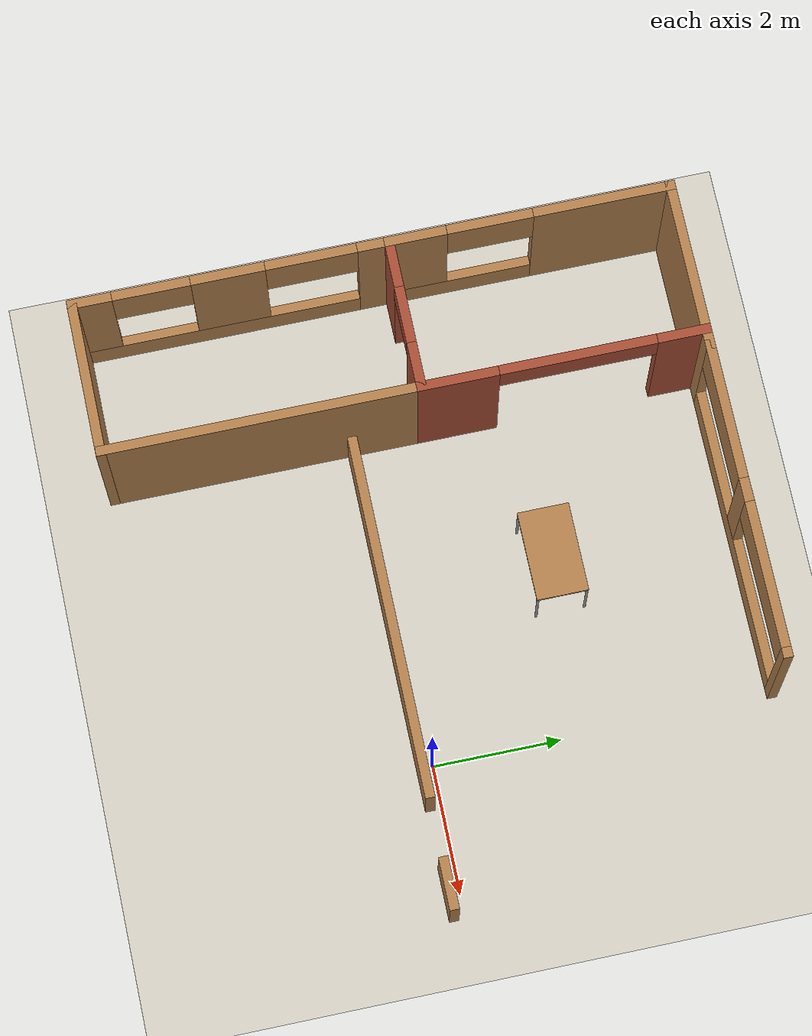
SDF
<sdf version="1.6">
 <world name="default">
  <model name="ground">
   <static>true</static>
   <link name="ground">
    <collision name="ground">
     <geometry><plane><normal>0 0 1</normal><size>100 100</size></plane></geometry>
    </collision>
    <visual name="ground">
     <geometry><plane><normal>0 0 1</normal><size>30 24</size></plane></geometry>
     <material>
      <ambient>.76 .74 .69 1</ambient>
      <diffuse>.82 .80 .75 1</diffuse>
      <specular>.02 .02 .02 1</specular>
     </material>
    </visual>
   </link>
  </model>
  <model name="turtlebot3_house">
   <link name="Wall_108">
    <pose>-1.37512 -0.17488 0 0 -0 0</pose>
    <visual name="Wall_108_Visual_0">
     <pose>-0.856324 0 0.5 0 -0 0</pose>
     <geometry><box><size>5.78735 0.15 1</size></box></geometry>
     <material>
      <script><uri>file://media/materials/scripts/gazebo.material</uri><name>Gazebo/Wood</name></script>
      <ambient>1 1 1 1</ambient>
      <diffuse>1 1 1 1</diffuse>
      <specular>0.2 0.2 0.2 1</specular>
      <emissive>0 0 0 1</emissive>
     </material>
    </visual>
    <visual name="Wall_108_Visual_1">
     <pose>3.34368 0 0.5 0 -0 0</pose>
     <geometry><box><size>0.812647 0.15 1</size></box></geometry>
     <material>
      <script><uri>file://media/materials/scripts/gazebo.material</uri><name>Gazebo/Wood</name></script>
      <ambient>1 1 1 1</ambient>
      <diffuse>1 1 1 1</diffuse>
      <specular>0.2 0.2 0.2 1</specular>
      <emissive>0 0 0 1</emissive>
     </material>
    </visual>
    <collision name="Wall_108_Collision_1">
     <pose>3.34368 0 0.5 0 -0 0</pose>
     <geometry><box><size>0.812647 0.15 1</size></box></geometry>
     <surface>
      <friction>
       <ode><mu>1</mu><mu2>1</mu2><fdir1>0 0 0</fdir1><slip1>0</slip1><slip2>0</slip2></ode>
       <torsional>
        <coefficient>1</coefficient>
        <patch_radius>0</patch_radius>
        <surface_radius>0</surface_radius>
        <use_patch_radius>1</use_patch_radius>
        <ode><slip>0</slip></ode>
       </torsional>
      </friction>
      <bounce><restitution_coefficient>0</restitution_coefficient><threshold>1e+06</threshold></bounce>
      <contact>
       <collide_without_contact>0</collide_without_contact>
       <collide_without_contact_bitmask>1</collide_without_contact_bitmask>
       <collide_bitmask>1</collide_bitmask>
       <ode>
        <soft_cfm>0</soft_cfm>
        <soft_erp>0.2</soft_erp>
        <kp>1e+13</kp>
        <kd>1</kd>
        <max_vel>0.01</max_vel>
        <min_depth>0</min_depth>
       </ode>
       <bullet>
        <split_impulse>1</split_impulse>
        <split_impulse_penetration_threshold>-0.01</split_impulse_penetration_threshold>
        <soft_cfm>0</soft_cfm>
        <soft_erp>0.2</soft_erp>
        <kp>1e+13</kp>
        <kd>1</kd>
       </bullet>
      </contact>
     </surface>
    </collision>
    <collision name="Wall_108_Collision_0">
     <pose>-0.856324 0 0.5 0 -0 0</pose>
     <geometry><box><size>5.78735 0.15 1</size></box></geometry>
     <surface>
      <friction>
       <ode><mu>1</mu><mu2>1</mu2><fdir1>0 0 0</fdir1><slip1>0</slip1><slip2>0</slip2></ode>
       <torsional>
        <coefficient>1</coefficient>
        <patch_radius>0</patch_radius>
        <surface_radius>0</surface_radius>
        <use_patch_radius>1</use_patch_radius>
        <ode><slip>0</slip></ode>
       </torsional>
      </friction>
      <bounce><restitution_coefficient>0</restitution_coefficient><threshold>1e+06</threshold></bounce>
      <contact>
       <collide_without_contact>0</collide_without_contact>
       <collide_without_contact_bitmask>1</collide_without_contact_bitmask>
       <collide_bitmask>1</collide_bitmask>
       <ode>
        <soft_cfm>0</soft_cfm>
        <soft_erp>0.2</soft_erp>
        <kp>1e+13</kp>
        <kd>1</kd>
        <max_vel>0.01</max_vel>
        <min_depth>0</min_depth>
       </ode>
       <bullet>
        <split_impulse>1</split_impulse>
        <split_impulse_penetration_threshold>-0.01</split_impulse_penetration_threshold>
        <soft_cfm>0</soft_cfm>
        <soft_erp>0.2</soft_erp>
        <kp>1e+13</kp>
        <kd>1</kd>
       </bullet>
      </contact>
     </surface>
    </collision>
   </link>
   <link name="Wall_83">
    <pose>-2.475 5.275 0 0 -0 3.14159</pose>
    <visual name="Wall_83_Visual_2">
     <pose>0.110246 0 1.5 0 -0 0</pose>
     <geometry><box><size>0.37052 0.15 2</size></box></geometry>
     <material>
      <script><uri>file://media/materials/scripts/gazebo.material</uri><name>Gazebo/Wood</name></script>
      <ambient>1 1 1 1</ambient>
      <diffuse>1 1 1 1</diffuse>
      <specular>0.2 0.2 0.2 1</specular>
      <emissive>0 0 0 1</emissive>
     </material>
    </visual>
    <visual name="Wall_83_Visual_6">
     <pose>1.39775 0 2.1 0 -0 0</pose>
     <geometry><box><size>2.20449 0.15 0.8</size></box></geometry>
     <material>
      <script><uri>file://media/materials/scripts/gazebo.material</uri><name>Gazebo/Wood</name></script>
      <ambient>1 1 1 1</ambient>
      <diffuse>1 1 1 1</diffuse>
      <specular>0.2 0.2 0.2 1</specular>
      <emissive>0 0 0 1</emissive>
     </material>
    </visual>
    <visual name="Wall_83_Visual_3">
     <pose>0.110246 0 1.5 0 -0 0</pose>
     <geometry><box><size>0.37052 0.15 2</size></box></geometry>
     <material>
      <script><uri>file://media/materials/scripts/gazebo.material</uri><name>Gazebo/Wood</name></script>
      <ambient>1 1 1 1</ambient>
      <diffuse>1 1 1 1</diffuse>
      <specular>0.2 0.2 0.2 1</specular>
      <emissive>0 0 0 1</emissive>
     </material>
    </visual>
    <visual name="Wall_83_Visual_1">
     <pose>0.080993 0 0.25 0 -0 0</pose>
     <geometry><box><size>4.83801 0.15 0.5</size></box></geometry>
     <material>
      <script><uri>file://media/materials/scripts/gazebo.material</uri><name>Gazebo/Wood</name></script>
      <ambient>1 1 1 1</ambient>
      <diffuse>1 1 1 1</diffuse>
      <specular>0.2 0.2 0.2 1</specular>
      <emissive>0 0 0 1</emissive>
     </material>
    </visual>
    <visual name="Wall_83_Visual_4">
     <pose>-1.20651 0 2.1 0 -0 0</pose>
     <geometry><box><size>2.263 0.15 0.8</size></box></geometry>
     <material>
      <script><uri>file://media/materials/scripts/gazebo.material</uri><name>Gazebo/Wood</name></script>
      <ambient>1 1 1 1</ambient>
      <diffuse>1 1 1 1</diffuse>
      <specular>0.2 0.2 0.2 1</specular>
      <emissive>0 0 0 1</emissive>
     </material>
    </visual>
    <visual name="Wall_83_Visual_5">
     <pose>1.39775 0 2.1 0 -0 0</pose>
     <geometry><box><size>2.20449 0.15 0.8</size></box></geometry>
     <material>
      <script><uri>file://media/materials/scripts/gazebo.material</uri><name>Gazebo/Wood</name></script>
      <ambient>1 1 1 1</ambient>
      <diffuse>1 1 1 1</diffuse>
      <specular>0.2 0.2 0.2 1</specular>
      <emissive>0 0 0 1</emissive>
     </material>
    </visual>
    <visual name="Wall_83_Visual_0">
     <pose>-2.41901 0 1.25 0 -0 0</pose>
     <geometry><box><size>0.161986 0.15 2.5</size></box></geometry>
     <material>
      <script><uri>file://media/materials/scripts/gazebo.material</uri><name>Gazebo/Wood</name></script>
      <ambient>1 1 1 1</ambient>
      <diffuse>1 1 1 1</diffuse>
      <specular>0.2 0.2 0.2 1</specular>
      <emissive>0 0 0 1</emissive>
     </material>
    </visual>
    <collision name="Wall_83_Collision_4">
     <pose>-1.20651 0 2.1 0 -0 0</pose>
     <geometry><box><size>2.263 0.15 0.8</size></box></geometry>
     <surface>
      <friction>
       <ode><mu>1</mu><mu2>1</mu2><fdir1>0 0 0</fdir1><slip1>0</slip1><slip2>0</slip2></ode>
       <torsional>
        <coefficient>1</coefficient>
        <patch_radius>0</patch_radius>
        <surface_radius>0</surface_radius>
        <use_patch_radius>1</use_patch_radius>
        <ode><slip>0</slip></ode>
       </torsional>
      </friction>
      <bounce><restitution_coefficient>0</restitution_coefficient><threshold>1e+06</threshold></bounce>
      <contact>
       <collide_without_contact>0</collide_without_contact>
       <collide_without_contact_bitmask>1</collide_without_contact_bitmask>
       <collide_bitmask>1</collide_bitmask>
       <ode>
        <soft_cfm>0</soft_cfm>
        <soft_erp>0.2</soft_erp>
        <kp>1e+13</kp>
        <kd>1</kd>
        <max_vel>0.01</max_vel>
        <min_depth>0</min_depth>
       </ode>
       <bullet>
        <split_impulse>1</split_impulse>
        <split_impulse_penetration_threshold>-0.01</split_impulse_penetration_threshold>
        <soft_cfm>0</soft_cfm>
        <soft_erp>0.2</soft_erp>
        <kp>1e+13</kp>
        <kd>1</kd>
       </bullet>
      </contact>
     </surface>
    </collision>
    <collision name="Wall_83_Collision_2">
     <pose>0.110246 0 1.5 0 -0 0</pose>
     <geometry><box><size>0.37052 0.15 2</size></box></geometry>
     <surface>
      <friction>
       <ode><mu>1</mu><mu2>1</mu2><fdir1>0 0 0</fdir1><slip1>0</slip1><slip2>0</slip2></ode>
       <torsional>
        <coefficient>1</coefficient>
        <patch_radius>0</patch_radius>
        <surface_radius>0</surface_radius>
        <use_patch_radius>1</use_patch_radius>
        <ode><slip>0</slip></ode>
       </torsional>
      </friction>
      <bounce><restitution_coefficient>0</restitution_coefficient><threshold>1e+06</threshold></bounce>
      <contact>
       <collide_without_contact>0</collide_without_contact>
       <collide_without_contact_bitmask>1</collide_without_contact_bitmask>
       <collide_bitmask>1</collide_bitmask>
       <ode>
        <soft_cfm>0</soft_cfm>
        <soft_erp>0.2</soft_erp>
        <kp>1e+13</kp>
        <kd>1</kd>
        <max_vel>0.01</max_vel>
        <min_depth>0</min_depth>
       </ode>
       <bullet>
        <split_impulse>1</split_impulse>
        <split_impulse_penetration_threshold>-0.01</split_impulse_penetration_threshold>
        <soft_cfm>0</soft_cfm>
        <soft_erp>0.2</soft_erp>
        <kp>1e+13</kp>
        <kd>1</kd>
       </bullet>
      </contact>
     </surface>
    </collision>
    <collision name="Wall_83_Collision_6">
     <pose>1.39775 0 2.1 0 -0 0</pose>
     <geometry><box><size>2.20449 0.15 0.8</size></box></geometry>
     <surface>
      <friction>
       <ode><mu>1</mu><mu2>1</mu2><fdir1>0 0 0</fdir1><slip1>0</slip1><slip2>0</slip2></ode>
       <torsional>
        <coefficient>1</coefficient>
        <patch_radius>0</patch_radius>
        <surface_radius>0</surface_radius>
        <use_patch_radius>1</use_patch_radius>
        <ode><slip>0</slip></ode>
       </torsional>
      </friction>
      <bounce><restitution_coefficient>0</restitution_coefficient><threshold>1e+06</threshold></bounce>
      <contact>
       <collide_without_contact>0</collide_without_contact>
       <collide_without_contact_bitmask>1</collide_without_contact_bitmask>
       <collide_bitmask>1</collide_bitmask>
       <ode>
        <soft_cfm>0</soft_cfm>
        <soft_erp>0.2</soft_erp>
        <kp>1e+13</kp>
        <kd>1</kd>
        <max_vel>0.01</max_vel>
        <min_depth>0</min_depth>
       </ode>
       <bullet>
        <split_impulse>1</split_impulse>
        <split_impulse_penetration_threshold>-0.01</split_impulse_penetration_threshold>
        <soft_cfm>0</soft_cfm>
        <soft_erp>0.2</soft_erp>
        <kp>1e+13</kp>
        <kd>1</kd>
       </bullet>
      </contact>
     </surface>
    </collision>
    <collision name="Wall_83_Collision_0">
     <pose>-2.41901 0 1.25 0 -0 0</pose>
     <geometry><box><size>0.161986 0.15 2.5</size></box></geometry>
     <surface>
      <friction>
       <ode><mu>1</mu><mu2>1</mu2><fdir1>0 0 0</fdir1><slip1>0</slip1><slip2>0</slip2></ode>
       <torsional>
        <coefficient>1</coefficient>
        <patch_radius>0</patch_radius>
        <surface_radius>0</surface_radius>
        <use_patch_radius>1</use_patch_radius>
        <ode><slip>0</slip></ode>
       </torsional>
      </friction>
      <bounce><restitution_coefficient>0</restitution_coefficient><threshold>1e+06</threshold></bounce>
      <contact>
       <collide_without_contact>0</collide_without_contact>
       <collide_without_contact_bitmask>1</collide_without_contact_bitmask>
       <collide_bitmask>1</collide_bitmask>
       <ode>
        <soft_cfm>0</soft_cfm>
        <soft_erp>0.2</soft_erp>
        <kp>1e+13</kp>
        <kd>1</kd>
        <max_vel>0.01</max_vel>
        <min_depth>0</min_depth>
       </ode>
       <bullet>
        <split_impulse>1</split_impulse>
        <split_impulse_penetration_threshold>-0.01</split_impulse_penetration_threshold>
        <soft_cfm>0</soft_cfm>
        <soft_erp>0.2</soft_erp>
        <kp>1e+13</kp>
        <kd>1</kd>
       </bullet>
      </contact>
     </surface>
    </collision>
    <collision name="Wall_83_Collision_1">
     <pose>0.080993 0 0.25 0 -0 0</pose>
     <geometry><box><size>4.83801 0.15 0.5</size></box></geometry>
     <surface>
      <friction>
       <ode><mu>1</mu><mu2>1</mu2><fdir1>0 0 0</fdir1><slip1>0</slip1><slip2>0</slip2></ode>
       <torsional>
        <coefficient>1</coefficient>
        <patch_radius>0</patch_radius>
        <surface_radius>0</surface_radius>
        <use_patch_radius>1</use_patch_radius>
        <ode><slip>0</slip></ode>
       </torsional>
      </friction>
      <bounce><restitution_coefficient>0</restitution_coefficient><threshold>1e+06</threshold></bounce>
      <contact>
       <collide_without_contact>0</collide_without_contact>
       <collide_without_contact_bitmask>1</collide_without_contact_bitmask>
       <collide_bitmask>1</collide_bitmask>
       <ode>
        <soft_cfm>0</soft_cfm>
        <soft_erp>0.2</soft_erp>
        <kp>1e+13</kp>
        <kd>1</kd>
        <max_vel>0.01</max_vel>
        <min_depth>0</min_depth>
       </ode>
       <bullet>
        <split_impulse>1</split_impulse>
        <split_impulse_penetration_threshold>-0.01</split_impulse_penetration_threshold>
        <soft_cfm>0</soft_cfm>
        <soft_erp>0.2</soft_erp>
        <kp>1e+13</kp>
        <kd>1</kd>
       </bullet>
      </contact>
     </surface>
    </collision>
    <collision name="Wall_83_Collision_3">
     <pose>0.110246 0 1.5 0 -0 0</pose>
     <geometry><box><size>0.37052 0.15 2</size></box></geometry>
     <surface>
      <friction>
       <ode><mu>1</mu><mu2>1</mu2><fdir1>0 0 0</fdir1><slip1>0</slip1><slip2>0</slip2></ode>
       <torsional>
        <coefficient>1</coefficient>
        <patch_radius>0</patch_radius>
        <surface_radius>0</surface_radius>
        <use_patch_radius>1</use_patch_radius>
        <ode><slip>0</slip></ode>
       </torsional>
      </friction>
      <bounce><restitution_coefficient>0</restitution_coefficient><threshold>1e+06</threshold></bounce>
      <contact>
       <collide_without_contact>0</collide_without_contact>
       <collide_without_contact_bitmask>1</collide_without_contact_bitmask>
       <collide_bitmask>1</collide_bitmask>
       <ode>
        <soft_cfm>0</soft_cfm>
        <soft_erp>0.2</soft_erp>
        <kp>1e+13</kp>
        <kd>1</kd>
        <max_vel>0.01</max_vel>
        <min_depth>0</min_depth>
       </ode>
       <bullet>
        <split_impulse>1</split_impulse>
        <split_impulse_penetration_threshold>-0.01</split_impulse_penetration_threshold>
        <soft_cfm>0</soft_cfm>
        <soft_erp>0.2</soft_erp>
        <kp>1e+13</kp>
        <kd>1</kd>
       </bullet>
      </contact>
     </surface>
    </collision>
    <collision name="Wall_83_Collision_5">
     <pose>1.39775 0 2.1 0 -0 0</pose>
     <geometry><box><size>2.20449 0.15 0.8</size></box></geometry>
     <surface>
      <friction>
       <ode><mu>1</mu><mu2>1</mu2><fdir1>0 0 0</fdir1><slip1>0</slip1><slip2>0</slip2></ode>
       <torsional>
        <coefficient>1</coefficient>
        <patch_radius>0</patch_radius>
        <surface_radius>0</surface_radius>
        <use_patch_radius>1</use_patch_radius>
        <ode><slip>0</slip></ode>
       </torsional>
      </friction>
      <bounce><restitution_coefficient>0</restitution_coefficient><threshold>1e+06</threshold></bounce>
      <contact>
       <collide_without_contact>0</collide_without_contact>
       <collide_without_contact_bitmask>1</collide_without_contact_bitmask>
       <collide_bitmask>1</collide_bitmask>
       <ode>
        <soft_cfm>0</soft_cfm>
        <soft_erp>0.2</soft_erp>
        <kp>1e+13</kp>
        <kd>1</kd>
        <max_vel>0.01</max_vel>
        <min_depth>0</min_depth>
       </ode>
       <bullet>
        <split_impulse>1</split_impulse>
        <split_impulse_penetration_threshold>-0.01</split_impulse_penetration_threshold>
        <soft_cfm>0</soft_cfm>
        <soft_erp>0.2</soft_erp>
        <kp>1e+13</kp>
        <kd>1</kd>
       </bullet>
      </contact>
     </surface>
    </collision>
   </link>
   <link name="Wall_84">
    <pose>-6.2 5.275 0 0 -0 3.14159</pose>
    <visual name="Wall_84_Visual">
     <pose>0 0 1.25 0 -0 0</pose>
     <geometry><box><size>2.75 0.15 2.5</size></box></geometry>
     <material>
      <script><uri>file://media/materials/scripts/gazebo.material</uri><name>Gazebo/Wood</name></script>
      <ambient>1 1 1 1</ambient>
      <diffuse>1 1 1 1</diffuse>
      <specular>0.2 0.2 0.2 1</specular>
      <emissive>0 0 0 1</emissive>
     </material>
    </visual>
    <collision name="Wall_84_Collision">
     <pose>0 0 1.25 0 -0 0</pose>
     <geometry><box><size>2.75 0.15 2.5</size></box></geometry>
     <surface>
      <friction>
       <ode><mu>1</mu><mu2>1</mu2><fdir1>0 0 0</fdir1><slip1>0</slip1><slip2>0</slip2></ode>
       <torsional>
        <coefficient>1</coefficient>
        <patch_radius>0</patch_radius>
        <surface_radius>0</surface_radius>
        <use_patch_radius>1</use_patch_radius>
        <ode><slip>0</slip></ode>
       </torsional>
      </friction>
      <bounce><restitution_coefficient>0</restitution_coefficient><threshold>1e+06</threshold></bounce>
      <contact>
       <collide_without_contact>0</collide_without_contact>
       <collide_without_contact_bitmask>1</collide_without_contact_bitmask>
       <collide_bitmask>1</collide_bitmask>
       <ode>
        <soft_cfm>0</soft_cfm>
        <soft_erp>0.2</soft_erp>
        <kp>1e+13</kp>
        <kd>1</kd>
        <max_vel>0.01</max_vel>
        <min_depth>0</min_depth>
       </ode>
       <bullet>
        <split_impulse>1</split_impulse>
        <split_impulse_penetration_threshold>-0.01</split_impulse_penetration_threshold>
        <soft_cfm>0</soft_cfm>
        <soft_erp>0.2</soft_erp>
        <kp>1e+13</kp>
        <kd>1</kd>
       </bullet>
      </contact>
     </surface>
    </collision>
   </link>
   <link name="Wall_85">
    <pose>-7.5 3.1 0 0 0 -1.5708</pose>
    <visual name="Wall_85_Visual_3">
     <pose>0.62212 0 2.1 0 -0 0</pose>
     <geometry><box><size>1.332 0.15 0.8</size></box></geometry>
     <material>
      <script><uri>file://media/materials/scripts/gazebo.material</uri><name>Gazebo/Wood</name></script>
      <ambient>1 1 1 1</ambient>
      <diffuse>1 1 1 1</diffuse>
      <specular>0.2 0.2 0.2 1</specular>
      <emissive>0 0 0 1</emissive>
     </material>
    </visual>
    <visual name="Wall_85_Visual_2">
     <pose>1.76906 0 1.5 0 -0 0</pose>
     <geometry><box><size>0.96188 0.15 2</size></box></geometry>
     <material>
      <script><uri>file://media/materials/scripts/gazebo.material</uri><name>Gazebo/Wood</name></script>
      <ambient>1 1 1 1</ambient>
      <diffuse>1 1 1 1</diffuse>
      <specular>0.2 0.2 0.2 1</specular>
      <emissive>0 0 0 1</emissive>
     </material>
    </visual>
    <visual name="Wall_85_Visual_0">
     <pose>-1.14694 0 1.25 0 -0 0</pose>
     <geometry><box><size>2.20612 0.15 2.5</size></box></geometry>
     <material>
      <script><uri>file://media/materials/scripts/gazebo.material</uri><name>Gazebo/Wood</name></script>
      <ambient>1 1 1 1</ambient>
      <diffuse>1 1 1 1</diffuse>
      <specular>0.2 0.2 0.2 1</specular>
      <emissive>0 0 0 1</emissive>
     </material>
    </visual>
    <visual name="Wall_85_Visual_1">
     <pose>1.10306 0 0.25 0 -0 0</pose>
     <geometry><box><size>2.29388 0.15 0.5</size></box></geometry>
     <material>
      <script><uri>file://media/materials/scripts/gazebo.material</uri><name>Gazebo/Wood</name></script>
      <ambient>1 1 1 1</ambient>
      <diffuse>1 1 1 1</diffuse>
      <specular>0.2 0.2 0.2 1</specular>
      <emissive>0 0 0 1</emissive>
     </material>
    </visual>
    <collision name="Wall_85_Collision_3">
     <pose>0.62212 0 2.1 0 -0 0</pose>
     <geometry><box><size>1.332 0.15 0.8</size></box></geometry>
     <surface>
      <friction>
       <ode><mu>1</mu><mu2>1</mu2><fdir1>0 0 0</fdir1><slip1>0</slip1><slip2>0</slip2></ode>
       <torsional>
        <coefficient>1</coefficient>
        <patch_radius>0</patch_radius>
        <surface_radius>0</surface_radius>
        <use_patch_radius>1</use_patch_radius>
        <ode><slip>0</slip></ode>
       </torsional>
      </friction>
      <bounce><restitution_coefficient>0</restitution_coefficient><threshold>1e+06</threshold></bounce>
      <contact>
       <collide_without_contact>0</collide_without_contact>
       <collide_without_contact_bitmask>1</collide_without_contact_bitmask>
       <collide_bitmask>1</collide_bitmask>
       <ode>
        <soft_cfm>0</soft_cfm>
        <soft_erp>0.2</soft_erp>
        <kp>1e+13</kp>
        <kd>1</kd>
        <max_vel>0.01</max_vel>
        <min_depth>0</min_depth>
       </ode>
       <bullet>
        <split_impulse>1</split_impulse>
        <split_impulse_penetration_threshold>-0.01</split_impulse_penetration_threshold>
        <soft_cfm>0</soft_cfm>
        <soft_erp>0.2</soft_erp>
        <kp>1e+13</kp>
        <kd>1</kd>
       </bullet>
      </contact>
     </surface>
    </collision>
    <collision name="Wall_85_Collision_2">
     <pose>1.76906 0 1.5 0 -0 0</pose>
     <geometry><box><size>0.96188 0.15 2</size></box></geometry>
     <surface>
      <friction>
       <ode><mu>1</mu><mu2>1</mu2><fdir1>0 0 0</fdir1><slip1>0</slip1><slip2>0</slip2></ode>
       <torsional>
        <coefficient>1</coefficient>
        <patch_radius>0</patch_radius>
        <surface_radius>0</surface_radius>
        <use_patch_radius>1</use_patch_radius>
        <ode><slip>0</slip></ode>
       </torsional>
      </friction>
      <bounce><restitution_coefficient>0</restitution_coefficient><threshold>1e+06</threshold></bounce>
      <contact>
       <collide_without_contact>0</collide_without_contact>
       <collide_without_contact_bitmask>1</collide_without_contact_bitmask>
       <collide_bitmask>1</collide_bitmask>
       <ode>
        <soft_cfm>0</soft_cfm>
        <soft_erp>0.2</soft_erp>
        <kp>1e+13</kp>
        <kd>1</kd>
        <max_vel>0.01</max_vel>
        <min_depth>0</min_depth>
       </ode>
       <bullet>
        <split_impulse>1</split_impulse>
        <split_impulse_penetration_threshold>-0.01</split_impulse_penetration_threshold>
        <soft_cfm>0</soft_cfm>
        <soft_erp>0.2</soft_erp>
        <kp>1e+13</kp>
        <kd>1</kd>
       </bullet>
      </contact>
     </surface>
    </collision>
    <collision name="Wall_85_Collision_1">
     <pose>1.10306 0 0.25 0 -0 0</pose>
     <geometry><box><size>2.29388 0.15 0.5</size></box></geometry>
     <surface>
      <friction>
       <ode><mu>1</mu><mu2>1</mu2><fdir1>0 0 0</fdir1><slip1>0</slip1><slip2>0</slip2></ode>
       <torsional>
        <coefficient>1</coefficient>
        <patch_radius>0</patch_radius>
        <surface_radius>0</surface_radius>
        <use_patch_radius>1</use_patch_radius>
        <ode><slip>0</slip></ode>
       </torsional>
      </friction>
      <bounce><restitution_coefficient>0</restitution_coefficient><threshold>1e+06</threshold></bounce>
      <contact>
       <collide_without_contact>0</collide_without_contact>
       <collide_without_contact_bitmask>1</collide_without_contact_bitmask>
       <collide_bitmask>1</collide_bitmask>
       <ode>
        <soft_cfm>0</soft_cfm>
        <soft_erp>0.2</soft_erp>
        <kp>1e+13</kp>
        <kd>1</kd>
        <max_vel>0.01</max_vel>
        <min_depth>0</min_depth>
       </ode>
       <bullet>
        <split_impulse>1</split_impulse>
        <split_impulse_penetration_threshold>-0.01</split_impulse_penetration_threshold>
        <soft_cfm>0</soft_cfm>
        <soft_erp>0.2</soft_erp>
        <kp>1e+13</kp>
        <kd>1</kd>
       </bullet>
      </contact>
     </surface>
    </collision>
    <collision name="Wall_85_Collision_0">
     <pose>-1.14694 0 1.25 0 -0 0</pose>
     <geometry><box><size>2.20612 0.15 2.5</size></box></geometry>
     <surface>
      <friction>
       <ode><mu>1</mu><mu2>1</mu2><fdir1>0 0 0</fdir1><slip1>0</slip1><slip2>0</slip2></ode>
       <torsional>
        <coefficient>1</coefficient>
        <patch_radius>0</patch_radius>
        <surface_radius>0</surface_radius>
        <use_patch_radius>1</use_patch_radius>
        <ode><slip>0</slip></ode>
       </torsional>
      </friction>
      <bounce><restitution_coefficient>0</restitution_coefficient><threshold>1e+06</threshold></bounce>
      <contact>
       <collide_without_contact>0</collide_without_contact>
       <collide_without_contact_bitmask>1</collide_without_contact_bitmask>
       <collide_bitmask>1</collide_bitmask>
       <ode>
        <soft_cfm>0</soft_cfm>
        <soft_erp>0.2</soft_erp>
        <kp>1e+13</kp>
        <kd>1</kd>
        <max_vel>0.01</max_vel>
        <min_depth>0</min_depth>
       </ode>
       <bullet>
        <split_impulse>1</split_impulse>
        <split_impulse_penetration_threshold>-0.01</split_impulse_penetration_threshold>
        <soft_cfm>0</soft_cfm>
        <soft_erp>0.2</soft_erp>
        <kp>1e+13</kp>
        <kd>1</kd>
       </bullet>
      </contact>
     </surface>
    </collision>
   </link>
   <link name="Wall_86">
    <pose>-7.5 -1.5 0 0 0 -1.5708</pose>
    <visual name="Wall_86_Visual_1">
     <pose>0.28462 0 0.25 0 -0 0</pose>
     <geometry><box><size>4.43076 0.15 0.5</size></box></geometry>
     <material>
      <script><uri>file://media/materials/scripts/gazebo.material</uri><name>Gazebo/Wood</name></script>
      <ambient>1 1 1 1</ambient>
      <diffuse>1 1 1 1</diffuse>
      <specular>0.2 0.2 0.2 1</specular>
      <emissive>0 0 0 1</emissive>
     </material>
    </visual>
    <visual name="Wall_86_Visual_4">
     <pose>-1.22476 0 2.1 0 -0 0</pose>
     <geometry><box><size>1.412 0.15 0.8</size></box></geometry>
     <material>
      <script><uri>file://media/materials/scripts/gazebo.material</uri><name>Gazebo/Wood</name></script>
      <ambient>1 1 1 1</ambient>
      <diffuse>1 1 1 1</diffuse>
      <specular>0.2 0.2 0.2 1</specular>
      <emissive>0 0 0 1</emissive>
     </material>
    </visual>
    <visual name="Wall_86_Visual_0">
     <pose>-2.21538 0 1.25 0 -0 0</pose>
     <geometry><box><size>0.569241 0.15 2.5</size></box></geometry>
     <material>
      <script><uri>file://media/materials/scripts/gazebo.material</uri><name>Gazebo/Wood</name></script>
      <ambient>1 1 1 1</ambient>
      <diffuse>1 1 1 1</diffuse>
      <specular>0.2 0.2 0.2 1</specular>
      <emissive>0 0 0 1</emissive>
     </material>
    </visual>
    <visual name="Wall_86_Visual_5">
     <pose>1.22246 0 2.1 0 -0 0</pose>
     <geometry><box><size>1.199 0.15 0.8</size></box></geometry>
     <material>
      <script><uri>file://media/materials/scripts/gazebo.material</uri><name>Gazebo/Wood</name></script>
      <ambient>1 1 1 1</ambient>
      <diffuse>1 1 1 1</diffuse>
      <specular>0.2 0.2 0.2 1</specular>
      <emissive>0 0 0 1</emissive>
     </material>
    </visual>
    <visual name="Wall_86_Visual_2">
     <pose>0.0521 0 1.5 0 -0 0</pose>
     <geometry><box><size>1.14172 0.15 2</size></box></geometry>
     <material>
      <script><uri>file://media/materials/scripts/gazebo.material</uri><name>Gazebo/Wood</name></script>
      <ambient>1 1 1 1</ambient>
      <diffuse>1 1 1 1</diffuse>
      <specular>0.2 0.2 0.2 1</specular>
      <emissive>0 0 0 1</emissive>
     </material>
    </visual>
    <visual name="Wall_86_Visual_3">
     <pose>2.16098 0 1.5 0 -0 0</pose>
     <geometry><box><size>0.678041 0.15 2</size></box></geometry>
     <material>
      <script><uri>file://media/materials/scripts/gazebo.material</uri><name>Gazebo/Wood</name></script>
      <ambient>1 1 1 1</ambient>
      <diffuse>1 1 1 1</diffuse>
      <specular>0.2 0.2 0.2 1</specular>
      <emissive>0 0 0 1</emissive>
     </material>
    </visual>
    <collision name="Wall_86_Collision_4">
     <pose>-1.22476 0 2.1 0 -0 0</pose>
     <geometry><box><size>1.412 0.15 0.8</size></box></geometry>
     <surface>
      <friction>
       <ode><mu>1</mu><mu2>1</mu2><fdir1>0 0 0</fdir1><slip1>0</slip1><slip2>0</slip2></ode>
       <torsional>
        <coefficient>1</coefficient>
        <patch_radius>0</patch_radius>
        <surface_radius>0</surface_radius>
        <use_patch_radius>1</use_patch_radius>
        <ode><slip>0</slip></ode>
       </torsional>
      </friction>
      <bounce><restitution_coefficient>0</restitution_coefficient><threshold>1e+06</threshold></bounce>
      <contact>
       <collide_without_contact>0</collide_without_contact>
       <collide_without_contact_bitmask>1</collide_without_contact_bitmask>
       <collide_bitmask>1</collide_bitmask>
       <ode>
        <soft_cfm>0</soft_cfm>
        <soft_erp>0.2</soft_erp>
        <kp>1e+13</kp>
        <kd>1</kd>
        <max_vel>0.01</max_vel>
        <min_depth>0</min_depth>
       </ode>
       <bullet>
        <split_impulse>1</split_impulse>
        <split_impulse_penetration_threshold>-0.01</split_impulse_penetration_threshold>
        <soft_cfm>0</soft_cfm>
        <soft_erp>0.2</soft_erp>
        <kp>1e+13</kp>
        <kd>1</kd>
       </bullet>
      </contact>
     </surface>
    </collision>
    <collision name="Wall_86_Collision_5">
     <pose>1.22246 0 2.1 0 -0 0</pose>
     <geometry><box><size>1.199 0.15 0.8</size></box></geometry>
     <surface>
      <friction>
       <ode><mu>1</mu><mu2>1</mu2><fdir1>0 0 0</fdir1><slip1>0</slip1><slip2>0</slip2></ode>
       <torsional>
        <coefficient>1</coefficient>
        <patch_radius>0</patch_radius>
        <surface_radius>0</surface_radius>
        <use_patch_radius>1</use_patch_radius>
        <ode><slip>0</slip></ode>
       </torsional>
      </friction>
      <bounce><restitution_coefficient>0</restitution_coefficient><threshold>1e+06</threshold></bounce>
      <contact>
       <collide_without_contact>0</collide_without_contact>
       <collide_without_contact_bitmask>1</collide_without_contact_bitmask>
       <collide_bitmask>1</collide_bitmask>
       <ode>
        <soft_cfm>0</soft_cfm>
        <soft_erp>0.2</soft_erp>
        <kp>1e+13</kp>
        <kd>1</kd>
        <max_vel>0.01</max_vel>
        <min_depth>0</min_depth>
       </ode>
       <bullet>
        <split_impulse>1</split_impulse>
        <split_impulse_penetration_threshold>-0.01</split_impulse_penetration_threshold>
        <soft_cfm>0</soft_cfm>
        <soft_erp>0.2</soft_erp>
        <kp>1e+13</kp>
        <kd>1</kd>
       </bullet>
      </contact>
     </surface>
    </collision>
    <collision name="Wall_86_Collision_2">
     <pose>0.0521 0 1.5 0 -0 0</pose>
     <geometry><box><size>1.14172 0.15 2</size></box></geometry>
     <surface>
      <friction>
       <ode><mu>1</mu><mu2>1</mu2><fdir1>0 0 0</fdir1><slip1>0</slip1><slip2>0</slip2></ode>
       <torsional>
        <coefficient>1</coefficient>
        <patch_radius>0</patch_radius>
        <surface_radius>0</surface_radius>
        <use_patch_radius>1</use_patch_radius>
        <ode><slip>0</slip></ode>
       </torsional>
      </friction>
      <bounce><restitution_coefficient>0</restitution_coefficient><threshold>1e+06</threshold></bounce>
      <contact>
       <collide_without_contact>0</collide_without_contact>
       <collide_without_contact_bitmask>1</collide_without_contact_bitmask>
       <collide_bitmask>1</collide_bitmask>
       <ode>
        <soft_cfm>0</soft_cfm>
        <soft_erp>0.2</soft_erp>
        <kp>1e+13</kp>
        <kd>1</kd>
        <max_vel>0.01</max_vel>
        <min_depth>0</min_depth>
       </ode>
       <bullet>
        <split_impulse>1</split_impulse>
        <split_impulse_penetration_threshold>-0.01</split_impulse_penetration_threshold>
        <soft_cfm>0</soft_cfm>
        <soft_erp>0.2</soft_erp>
        <kp>1e+13</kp>
        <kd>1</kd>
       </bullet>
      </contact>
     </surface>
    </collision>
    <collision name="Wall_86_Collision_1">
     <pose>0.28462 0 0.25 0 -0 0</pose>
     <geometry><box><size>4.43076 0.15 0.5</size></box></geometry>
     <surface>
      <friction>
       <ode><mu>1</mu><mu2>1</mu2><fdir1>0 0 0</fdir1><slip1>0</slip1><slip2>0</slip2></ode>
       <torsional>
        <coefficient>1</coefficient>
        <patch_radius>0</patch_radius>
        <surface_radius>0</surface_radius>
        <use_patch_radius>1</use_patch_radius>
        <ode><slip>0</slip></ode>
       </torsional>
      </friction>
      <bounce><restitution_coefficient>0</restitution_coefficient><threshold>1e+06</threshold></bounce>
      <contact>
       <collide_without_contact>0</collide_without_contact>
       <collide_without_contact_bitmask>1</collide_without_contact_bitmask>
       <collide_bitmask>1</collide_bitmask>
       <ode>
        <soft_cfm>0</soft_cfm>
        <soft_erp>0.2</soft_erp>
        <kp>1e+13</kp>
        <kd>1</kd>
        <max_vel>0.01</max_vel>
        <min_depth>0</min_depth>
       </ode>
       <bullet>
        <split_impulse>1</split_impulse>
        <split_impulse_penetration_threshold>-0.01</split_impulse_penetration_threshold>
        <soft_cfm>0</soft_cfm>
        <soft_erp>0.2</soft_erp>
        <kp>1e+13</kp>
        <kd>1</kd>
       </bullet>
      </contact>
     </surface>
    </collision>
    <collision name="Wall_86_Collision_3">
     <pose>2.16098 0 1.5 0 -0 0</pose>
     <geometry><box><size>0.678041 0.15 2</size></box></geometry>
     <surface>
      <friction>
       <ode><mu>1</mu><mu2>1</mu2><fdir1>0 0 0</fdir1><slip1>0</slip1><slip2>0</slip2></ode>
       <torsional>
        <coefficient>1</coefficient>
        <patch_radius>0</patch_radius>
        <surface_radius>0</surface_radius>
        <use_patch_radius>1</use_patch_radius>
        <ode><slip>0</slip></ode>
       </torsional>
      </friction>
      <bounce><restitution_coefficient>0</restitution_coefficient><threshold>1e+06</threshold></bounce>
      <contact>
       <collide_without_contact>0</collide_without_contact>
       <collide_without_contact_bitmask>1</collide_without_contact_bitmask>
       <collide_bitmask>1</collide_bitmask>
       <ode>
        <soft_cfm>0</soft_cfm>
        <soft_erp>0.2</soft_erp>
        <kp>1e+13</kp>
        <kd>1</kd>
        <max_vel>0.01</max_vel>
        <min_depth>0</min_depth>
       </ode>
       <bullet>
        <split_impulse>1</split_impulse>
        <split_impulse_penetration_threshold>-0.01</split_impulse_penetration_threshold>
        <soft_cfm>0</soft_cfm>
        <soft_erp>0.2</soft_erp>
        <kp>1e+13</kp>
        <kd>1</kd>
       </bullet>
      </contact>
     </surface>
    </collision>
    <collision name="Wall_86_Collision_0">
     <pose>-2.21538 0 1.25 0 -0 0</pose>
     <geometry><box><size>0.569241 0.15 2.5</size></box></geometry>
     <surface>
      <friction>
       <ode><mu>1</mu><mu2>1</mu2><fdir1>0 0 0</fdir1><slip1>0</slip1><slip2>0</slip2></ode>
       <torsional>
        <coefficient>1</coefficient>
        <patch_radius>0</patch_radius>
        <surface_radius>0</surface_radius>
        <use_patch_radius>1</use_patch_radius>
        <ode><slip>0</slip></ode>
       </torsional>
      </friction>
      <bounce><restitution_coefficient>0</restitution_coefficient><threshold>1e+06</threshold></bounce>
      <contact>
       <collide_without_contact>0</collide_without_contact>
       <collide_without_contact_bitmask>1</collide_without_contact_bitmask>
       <collide_bitmask>1</collide_bitmask>
       <ode>
        <soft_cfm>0</soft_cfm>
        <soft_erp>0.2</soft_erp>
        <kp>1e+13</kp>
        <kd>1</kd>
        <max_vel>0.01</max_vel>
        <min_depth>0</min_depth>
       </ode>
       <bullet>
        <split_impulse>1</split_impulse>
        <split_impulse_penetration_threshold>-0.01</split_impulse_penetration_threshold>
        <soft_cfm>0</soft_cfm>
        <soft_erp>0.2</soft_erp>
        <kp>1e+13</kp>
        <kd>1</kd>
       </bullet>
      </contact>
     </surface>
    </collision>
   </link>
   <link name="Wall_87">
    <pose>-6.325 -3.925 0 0 -0 0</pose>
    <visual name="Wall_87_Visual">
     <pose>0 0 1.25 0 -0 0</pose>
     <geometry><box><size>2.5 0.15 2.5</size></box></geometry>
     <material>
      <script><uri>file://media/materials/scripts/gazebo.material</uri><name>Gazebo/Wood</name></script>
      <ambient>1 1 1 1</ambient>
      <diffuse>1 1 1 1</diffuse>
      <specular>0.2 0.2 0.2 1</specular>
      <emissive>0 0 0 1</emissive>
     </material>
    </visual>
    <collision name="Wall_87_Collision">
     <pose>0 0 1.25 0 -0 0</pose>
     <geometry><box><size>2.5 0.15 2.5</size></box></geometry>
     <surface>
      <friction>
       <ode><mu>1</mu><mu2>1</mu2><fdir1>0 0 0</fdir1><slip1>0</slip1><slip2>0</slip2></ode>
       <torsional>
        <coefficient>1</coefficient>
        <patch_radius>0</patch_radius>
        <surface_radius>0</surface_radius>
        <use_patch_radius>1</use_patch_radius>
        <ode><slip>0</slip></ode>
       </torsional>
      </friction>
      <bounce><restitution_coefficient>0</restitution_coefficient><threshold>1e+06</threshold></bounce>
      <contact>
       <collide_without_contact>0</collide_without_contact>
       <collide_without_contact_bitmask>1</collide_without_contact_bitmask>
       <collide_bitmask>1</collide_bitmask>
       <ode>
        <soft_cfm>0</soft_cfm>
        <soft_erp>0.2</soft_erp>
        <kp>1e+13</kp>
        <kd>1</kd>
        <max_vel>0.01</max_vel>
        <min_depth>0</min_depth>
       </ode>
       <bullet>
        <split_impulse>1</split_impulse>
        <split_impulse_penetration_threshold>-0.01</split_impulse_penetration_threshold>
        <soft_cfm>0</soft_cfm>
        <soft_erp>0.2</soft_erp>
        <kp>1e+13</kp>
        <kd>1</kd>
       </bullet>
      </contact>
     </surface>
    </collision>
   </link>
   <link name="Wall_88">
    <pose>-5.15151 -1.49625 0 0 -0 1.5708</pose>
    <visual name="Wall_88_Visual">
     <pose>0 0 1.25 0 -0 0</pose>
     <geometry><box><size>5 0.15 2.5</size></box></geometry>
     <material>
      <script><uri>file://media/materials/scripts/gazebo.material</uri><name>Gazebo/Wood</name></script>
      <ambient>1 1 1 1</ambient>
      <diffuse>1 1 1 1</diffuse>
      <specular>0.2 0.2 0.2 1</specular>
      <emissive>0 0 0 1</emissive>
     </material>
    </visual>
    <collision name="Wall_88_Collision">
     <pose>0 0 1.25 0 -0 0</pose>
     <geometry><box><size>5 0.15 2.5</size></box></geometry>
     <surface>
      <friction>
       <ode><mu>1</mu><mu2>1</mu2><fdir1>0 0 0</fdir1><slip1>0</slip1><slip2>0</slip2></ode>
       <torsional>
        <coefficient>1</coefficient>
        <patch_radius>0</patch_radius>
        <surface_radius>0</surface_radius>
        <use_patch_radius>1</use_patch_radius>
        <ode><slip>0</slip></ode>
       </torsional>
      </friction>
      <bounce><restitution_coefficient>0</restitution_coefficient><threshold>1e+06</threshold></bounce>
      <contact>
       <collide_without_contact>0</collide_without_contact>
       <collide_without_contact_bitmask>1</collide_without_contact_bitmask>
       <collide_bitmask>1</collide_bitmask>
       <ode>
        <soft_cfm>0</soft_cfm>
        <soft_erp>0.2</soft_erp>
        <kp>1e+13</kp>
        <kd>1</kd>
        <max_vel>0.01</max_vel>
        <min_depth>0</min_depth>
       </ode>
       <bullet>
        <split_impulse>1</split_impulse>
        <split_impulse_penetration_threshold>-0.01</split_impulse_penetration_threshold>
        <soft_cfm>0</soft_cfm>
        <soft_erp>0.2</soft_erp>
        <kp>1e+13</kp>
        <kd>1</kd>
       </bullet>
      </contact>
     </surface>
    </collision>
   </link>
   <link name="Wall_98">
    <pose>-6.325 0.925 0 0 -0 0</pose>
    <visual name="Wall_98_Visual_2">
     <pose>0.015777 0 2.25 0 -0 0</pose>
     <geometry><box><size>0.9 0.15 0.5</size></box></geometry>
     <material>
      <script><uri>file://media/materials/scripts/gazebo.material</uri><name>Gazebo/Bricks</name></script>
      <ambient>1 1 1 1</ambient>
      <diffuse>1 1 1 1</diffuse>
      <specular>0.2 0.2 0.2 1</specular>
      <emissive>0 0 0 1</emissive>
     </material>
    </visual>
    <visual name="Wall_98_Visual_1">
     <pose>0.857889 0 1.25 0 -0 0</pose>
     <geometry><box><size>0.784223 0.15 2.5</size></box></geometry>
     <material>
      <script><uri>file://media/materials/scripts/gazebo.material</uri><name>Gazebo/Bricks</name></script>
      <ambient>1 1 1 1</ambient>
      <diffuse>1 1 1 1</diffuse>
      <specular>0.2 0.2 0.2 1</specular>
      <emissive>0 0 0 1</emissive>
     </material>
    </visual>
    <visual name="Wall_98_Visual_0">
     <pose>-0.842111 0 1.25 0 -0 0</pose>
     <geometry><box><size>0.815777 0.15 2.5</size></box></geometry>
     <material>
      <script><uri>file://media/materials/scripts/gazebo.material</uri><name>Gazebo/Bricks</name></script>
      <ambient>1 1 1 1</ambient>
      <diffuse>1 1 1 1</diffuse>
      <specular>0.2 0.2 0.2 1</specular>
      <emissive>0 0 0 1</emissive>
     </material>
    </visual>
    <collision name="Wall_98_Collision_0">
     <pose>-0.842111 0 1.25 0 -0 0</pose>
     <geometry><box><size>0.815777 0.15 2.5</size></box></geometry>
     <surface>
      <friction>
       <ode><mu>1</mu><mu2>1</mu2><fdir1>0 0 0</fdir1><slip1>0</slip1><slip2>0</slip2></ode>
       <torsional>
        <coefficient>1</coefficient>
        <patch_radius>0</patch_radius>
        <surface_radius>0</surface_radius>
        <use_patch_radius>1</use_patch_radius>
        <ode><slip>0</slip></ode>
       </torsional>
      </friction>
      <bounce><restitution_coefficient>0</restitution_coefficient><threshold>1e+06</threshold></bounce>
      <contact>
       <collide_without_contact>0</collide_without_contact>
       <collide_without_contact_bitmask>1</collide_without_contact_bitmask>
       <collide_bitmask>1</collide_bitmask>
       <ode>
        <soft_cfm>0</soft_cfm>
        <soft_erp>0.2</soft_erp>
        <kp>1e+13</kp>
        <kd>1</kd>
        <max_vel>0.01</max_vel>
        <min_depth>0</min_depth>
       </ode>
       <bullet>
        <split_impulse>1</split_impulse>
        <split_impulse_penetration_threshold>-0.01</split_impulse_penetration_threshold>
        <soft_cfm>0</soft_cfm>
        <soft_erp>0.2</soft_erp>
        <kp>1e+13</kp>
        <kd>1</kd>
       </bullet>
      </contact>
     </surface>
    </collision>
    <collision name="Wall_98_Collision_1">
     <pose>0.857889 0 1.25 0 -0 0</pose>
     <geometry><box><size>0.784223 0.15 2.5</size></box></geometry>
     <surface>
      <friction>
       <ode><mu>1</mu><mu2>1</mu2><fdir1>0 0 0</fdir1><slip1>0</slip1><slip2>0</slip2></ode>
       <torsional>
        <coefficient>1</coefficient>
        <patch_radius>0</patch_radius>
        <surface_radius>0</surface_radius>
        <use_patch_radius>1</use_patch_radius>
        <ode><slip>0</slip></ode>
       </torsional>
      </friction>
      <bounce><restitution_coefficient>0</restitution_coefficient><threshold>1e+06</threshold></bounce>
      <contact>
       <collide_without_contact>0</collide_without_contact>
       <collide_without_contact_bitmask>1</collide_without_contact_bitmask>
       <collide_bitmask>1</collide_bitmask>
       <ode>
        <soft_cfm>0</soft_cfm>
        <soft_erp>0.2</soft_erp>
        <kp>1e+13</kp>
        <kd>1</kd>
        <max_vel>0.01</max_vel>
        <min_depth>0</min_depth>
       </ode>
       <bullet>
        <split_impulse>1</split_impulse>
        <split_impulse_penetration_threshold>-0.01</split_impulse_penetration_threshold>
        <soft_cfm>0</soft_cfm>
        <soft_erp>0.2</soft_erp>
        <kp>1e+13</kp>
        <kd>1</kd>
       </bullet>
      </contact>
     </surface>
    </collision>
    <collision name="Wall_98_Collision_2">
     <pose>0.015777 0 2.25 0 -0 0</pose>
     <geometry><box><size>0.9 0.15 0.5</size></box></geometry>
     <surface>
      <friction>
       <ode><mu>1</mu><mu2>1</mu2><fdir1>0 0 0</fdir1><slip1>0</slip1><slip2>0</slip2></ode>
       <torsional>
        <coefficient>1</coefficient>
        <patch_radius>0</patch_radius>
        <surface_radius>0</surface_radius>
        <use_patch_radius>1</use_patch_radius>
        <ode><slip>0</slip></ode>
       </torsional>
      </friction>
      <bounce><restitution_coefficient>0</restitution_coefficient><threshold>1e+06</threshold></bounce>
      <contact>
       <collide_without_contact>0</collide_without_contact>
       <collide_without_contact_bitmask>1</collide_without_contact_bitmask>
       <collide_bitmask>1</collide_bitmask>
       <ode>
        <soft_cfm>0</soft_cfm>
        <soft_erp>0.2</soft_erp>
        <kp>1e+13</kp>
        <kd>1</kd>
        <max_vel>0.01</max_vel>
        <min_depth>0</min_depth>
       </ode>
       <bullet>
        <split_impulse>1</split_impulse>
        <split_impulse_penetration_threshold>-0.01</split_impulse_penetration_threshold>
        <soft_cfm>0</soft_cfm>
        <soft_erp>0.2</soft_erp>
        <kp>1e+13</kp>
        <kd>1</kd>
       </bullet>
      </contact>
     </surface>
    </collision>
   </link>
   <link name="Wall_99">
    <pose>-5.15 3.1 0 0 -0 1.5708</pose>
    <visual name="Wall_99_Visual_0">
     <pose>-1.62116 0 1.25 0 -0 0</pose>
     <geometry><box><size>1.25768 0.15 2.5</size></box></geometry>
     <material>
      <script><uri>file://media/materials/scripts/gazebo.material</uri><name>Gazebo/Bricks</name></script>
      <ambient>1 1 1 1</ambient>
      <diffuse>1 1 1 1</diffuse>
      <specular>0.2 0.2 0.2 1</specular>
      <emissive>0 0 0 1</emissive>
     </material>
    </visual>
    <visual name="Wall_99_Visual_2">
     <pose>0.215786 0 2.25 0 -0 0</pose>
     <geometry><box><size>2.41621 0.15 0.5</size></box></geometry>
     <material>
      <script><uri>file://media/materials/scripts/gazebo.material</uri><name>Gazebo/Bricks</name></script>
      <ambient>1 1 1 1</ambient>
      <diffuse>1 1 1 1</diffuse>
      <specular>0.2 0.2 0.2 1</specular>
      <emissive>0 0 0 1</emissive>
     </material>
    </visual>
    <visual name="Wall_99_Visual_1">
     <pose>1.83695 0 1.25 0 -0 0</pose>
     <geometry><box><size>0.826108 0.15 2.5</size></box></geometry>
     <material>
      <script><uri>file://media/materials/scripts/gazebo.material</uri><name>Gazebo/Bricks</name></script>
      <ambient>1 1 1 1</ambient>
      <diffuse>1 1 1 1</diffuse>
      <specular>0.2 0.2 0.2 1</specular>
      <emissive>0 0 0 1</emissive>
     </material>
    </visual>
    <collision name="Wall_99_Collision_0">
     <pose>-1.62116 0 1.25 0 -0 0</pose>
     <geometry><box><size>1.25768 0.15 2.5</size></box></geometry>
     <surface>
      <friction>
       <ode><mu>1</mu><mu2>1</mu2><fdir1>0 0 0</fdir1><slip1>0</slip1><slip2>0</slip2></ode>
       <torsional>
        <coefficient>1</coefficient>
        <patch_radius>0</patch_radius>
        <surface_radius>0</surface_radius>
        <use_patch_radius>1</use_patch_radius>
        <ode><slip>0</slip></ode>
       </torsional>
      </friction>
      <bounce><restitution_coefficient>0</restitution_coefficient><threshold>1e+06</threshold></bounce>
      <contact>
       <collide_without_contact>0</collide_without_contact>
       <collide_without_contact_bitmask>1</collide_without_contact_bitmask>
       <collide_bitmask>1</collide_bitmask>
       <ode>
        <soft_cfm>0</soft_cfm>
        <soft_erp>0.2</soft_erp>
        <kp>1e+13</kp>
        <kd>1</kd>
        <max_vel>0.01</max_vel>
        <min_depth>0</min_depth>
       </ode>
       <bullet>
        <split_impulse>1</split_impulse>
        <split_impulse_penetration_threshold>-0.01</split_impulse_penetration_threshold>
        <soft_cfm>0</soft_cfm>
        <soft_erp>0.2</soft_erp>
        <kp>1e+13</kp>
        <kd>1</kd>
       </bullet>
      </contact>
     </surface>
    </collision>
    <collision name="Wall_99_Collision_1">
     <pose>1.83695 0 1.25 0 -0 0</pose>
     <geometry><box><size>0.826108 0.15 2.5</size></box></geometry>
     <surface>
      <friction>
       <ode><mu>1</mu><mu2>1</mu2><fdir1>0 0 0</fdir1><slip1>0</slip1><slip2>0</slip2></ode>
       <torsional>
        <coefficient>1</coefficient>
        <patch_radius>0</patch_radius>
        <surface_radius>0</surface_radius>
        <use_patch_radius>1</use_patch_radius>
        <ode><slip>0</slip></ode>
       </torsional>
      </friction>
      <bounce><restitution_coefficient>0</restitution_coefficient><threshold>1e+06</threshold></bounce>
      <contact>
       <collide_without_contact>0</collide_without_contact>
       <collide_without_contact_bitmask>1</collide_without_contact_bitmask>
       <collide_bitmask>1</collide_bitmask>
       <ode>
        <soft_cfm>0</soft_cfm>
        <soft_erp>0.2</soft_erp>
        <kp>1e+13</kp>
        <kd>1</kd>
        <max_vel>0.01</max_vel>
        <min_depth>0</min_depth>
       </ode>
       <bullet>
        <split_impulse>1</split_impulse>
        <split_impulse_penetration_threshold>-0.01</split_impulse_penetration_threshold>
        <soft_cfm>0</soft_cfm>
        <soft_erp>0.2</soft_erp>
        <kp>1e+13</kp>
        <kd>1</kd>
       </bullet>
      </contact>
     </surface>
    </collision>
    <collision name="Wall_99_Collision_2">
     <pose>0.215786 0 2.25 0 -0 0</pose>
     <geometry><box><size>2.41621 0.15 0.5</size></box></geometry>
     <surface>
      <friction>
       <ode><mu>1</mu><mu2>1</mu2><fdir1>0 0 0</fdir1><slip1>0</slip1><slip2>0</slip2></ode>
       <torsional>
        <coefficient>1</coefficient>
        <patch_radius>0</patch_radius>
        <surface_radius>0</surface_radius>
        <use_patch_radius>1</use_patch_radius>
        <ode><slip>0</slip></ode>
       </torsional>
      </friction>
      <bounce><restitution_coefficient>0</restitution_coefficient><threshold>1e+06</threshold></bounce>
      <contact>
       <collide_without_contact>0</collide_without_contact>
       <collide_without_contact_bitmask>1</collide_without_contact_bitmask>
       <collide_bitmask>1</collide_bitmask>
       <ode>
        <soft_cfm>0</soft_cfm>
        <soft_erp>0.2</soft_erp>
        <kp>1e+13</kp>
        <kd>1</kd>
        <max_vel>0.01</max_vel>
        <min_depth>0</min_depth>
       </ode>
       <bullet>
        <split_impulse>1</split_impulse>
        <split_impulse_penetration_threshold>-0.01</split_impulse_penetration_threshold>
        <soft_cfm>0</soft_cfm>
        <soft_erp>0.2</soft_erp>
        <kp>1e+13</kp>
        <kd>1</kd>
       </bullet>
      </contact>
     </surface>
    </collision>
   </link>
   <model name="table">
    <static>1</static>
    <link name="link">
     <collision name="surface">
      <pose>0 0 1 0 -0 0</pose>
      <geometry><box><size>1.4 0.8 0.04</size></box></geometry>
      <surface><friction><ode><mu>0.6</mu><mu2>0.6</mu2></ode></friction></surface>
     </collision>
     <visual name="visual1">
      <pose>0 0 1 0 -0 0</pose>
      <geometry><box><size>1.4 0.8 0.04</size></box></geometry>
      <material>
       <script><uri>file://media/materials/scripts/gazebo.material</uri><name>Gazebo/Wood</name></script>
      </material>
     </visual>
     <collision name="front_left_leg">
      <pose>0.68 0.38 0.5 0 -0 0</pose>
      <geometry><cylinder><radius>0.02</radius><length>1</length></cylinder></geometry>
     </collision>
     <visual name="front_left_leg">
      <pose>0.68 0.38 0.5 0 -0 0</pose>
      <geometry><cylinder><radius>0.02</radius><length>1</length></cylinder></geometry>
      <material>
       <script><uri>file://media/materials/scripts/gazebo.material</uri><name>Gazebo/Grey</name></script>
      </material>
     </visual>
     <collision name="front_right_leg">
      <pose>0.68 -0.38 0.5 0 -0 0</pose>
      <geometry><cylinder><radius>0.02</radius><length>1</length></cylinder></geometry>
     </collision>
     <visual name="front_right_leg">
      <pose>0.68 -0.38 0.5 0 -0 0</pose>
      <geometry><cylinder><radius>0.02</radius><length>1</length></cylinder></geometry>
      <material>
       <script><uri>file://media/materials/scripts/gazebo.material</uri><name>Gazebo/Grey</name></script>
      </material>
     </visual>
     <collision name="back_right_leg">
      <pose>-0.68 -0.38 0.5 0 -0 0</pose>
      <geometry><cylinder><radius>0.02</radius><length>1</length></cylinder></geometry>
     </collision>
     <visual name="back_right_leg">
      <pose>-0.68 -0.38 0.5 0 -0 0</pose>
      <geometry><cylinder><radius>0.02</radius><length>1</length></cylinder></geometry>
      <material>
       <script><uri>file://media/materials/scripts/gazebo.material</uri><name>Gazebo/Grey</name></script>
      </material>
     </visual>
     <collision name="back_left_leg">
      <pose>-0.68 0.38 0.5 0 -0 0</pose>
      <geometry><cylinder><radius>0.02</radius><length>1</length></cylinder></geometry>
     </collision>
     <visual name="back_left_leg">
      <pose>-0.68 0.38 0.5 0 -0 0</pose>
      <geometry><cylinder><radius>0.02</radius><length>1</length></cylinder></geometry>
      <material>
       <script><uri>file://media/materials/scripts/gazebo.material</uri><name>Gazebo/Grey</name></script>
      </material>
     </visual>
    </link>
    <pose>-2.65728 2.42376 0 0 -0 0</pose>
   </model>
   <static>1</static>
  </model>
 </world>
</sdf>
